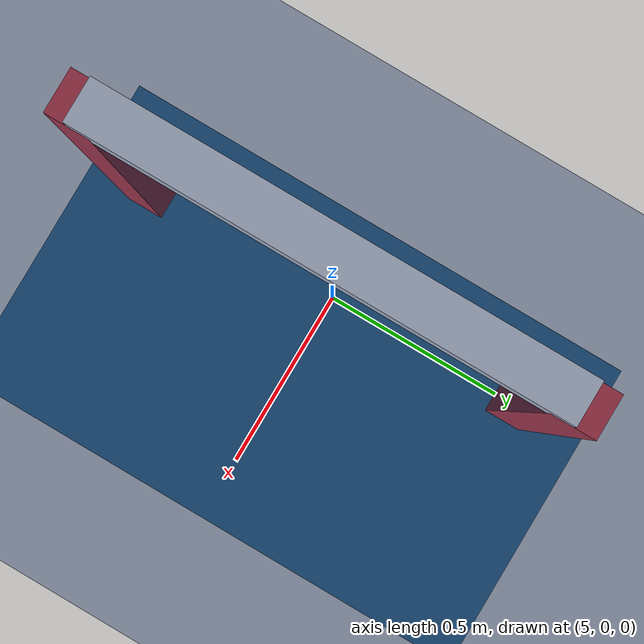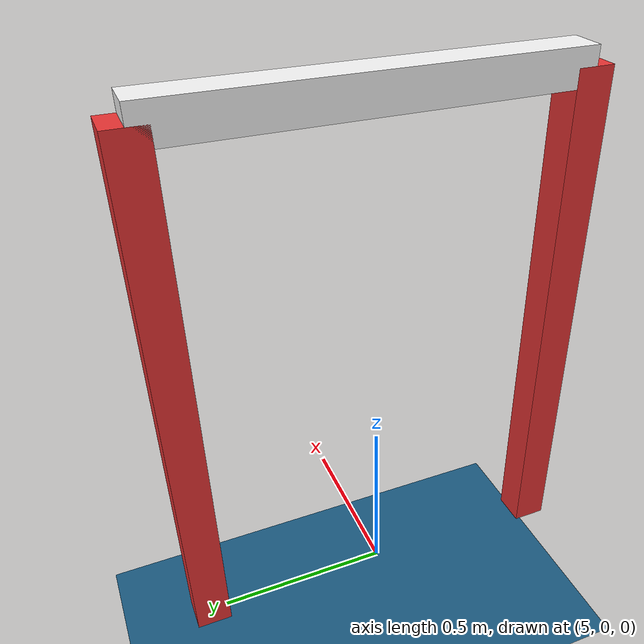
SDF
<sdf version="1.6">
 <world name="steelhead_gate_world">
  <gravity>0 0 -9.81</gravity>
  <physics name="ode" type="ode">
   <max_step_size>0.001</max_step_size>
   <real_time_update_rate>1000</real_time_update_rate>
   <real_time_factor>1.0</real_time_factor>
  </physics>
  <scene>
   <ambient>0.4 0.4 0.45 1</ambient>
   <background>0.05 0.08 0.12 1</background>
   <shadows>true</shadows>
  </scene>
  <include><uri>model://sun</uri></include>
  <model name="pool_floor">
   <static>true</static>
   <link name="floor">
    <collision name="col">
     <pose>0 0 -0.5 0 0 0</pose>
     <geometry><plane><normal>0 0 1</normal><size>50 50</size></plane></geometry>
     <surface><friction><ode><mu>0.8</mu><mu2>0.8</mu2></ode></friction></surface>
    </collision>
    <visual name="vis">
     <pose>0 0 -0.5 0 0 0</pose>
     <geometry><plane><normal>0 0 1</normal><size>50 50</size></plane></geometry>
     <material><ambient>0.10 0.25 0.35 1</ambient><diffuse>0.10 0.35 0.50 1</diffuse></material>
    </visual>
   </link>
  </model>
  <model name="water_surface">
   <static>true</static>
   <link name="surface">
    <visual name="vis">
     <pose>0 0 2 0 0 0</pose>
     <geometry><plane><normal>0 0 -1</normal><size>50 50</size></plane></geometry>
     <material><ambient>0.10 0.15 0.30 0.4</ambient><diffuse>0.10 0.20 0.40 0.4</diffuse></material>
    </visual>
   </link>
  </model>
  <model name="robosub_gate">
   <static>true</static>
   <pose>5 0 0 0 0 0</pose>
   <link name="left_post">
    <pose>0 -0.55 0.75 0 0 0</pose>
    <collision name="c"><geometry><box><size>0.1 0.1 1.5</size></box></geometry></collision>
    <visual name="v">
     <geometry><box><size>0.1 0.1 1.5</size></box></geometry>
     <material><ambient>0.9 0.2 0.2 1</ambient><diffuse>0.9 0.2 0.2 1</diffuse></material>
    </visual>
   </link>
   <link name="right_post">
    <pose>0 0.55 0.75 0 0 0</pose>
    <collision name="c"><geometry><box><size>0.1 0.1 1.5</size></box></geometry></collision>
    <visual name="v">
     <geometry><box><size>0.1 0.1 1.5</size></box></geometry>
     <material><ambient>0.9 0.2 0.2 1</ambient><diffuse>0.9 0.2 0.2 1</diffuse></material>
    </visual>
   </link>
   <link name="crossbar">
    <pose>0 0 1.5 0 0 0</pose>
    <collision name="c"><geometry><box><size>0.1 1.1 0.1</size></box></geometry></collision>
    <visual name="v">
     <geometry><box><size>0.1 1.1 0.1</size></box></geometry>
     <material><ambient>0.95 0.95 0.95 1</ambient><diffuse>0.95 0.95 0.95 1</diffuse></material>
    </visual>
   </link>
  </model>
 </world>
</sdf>
